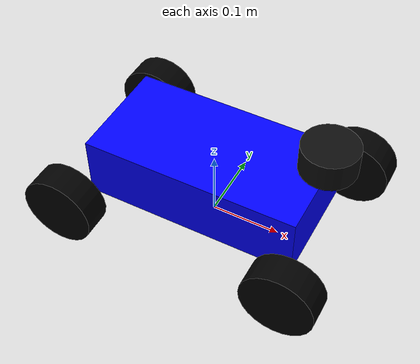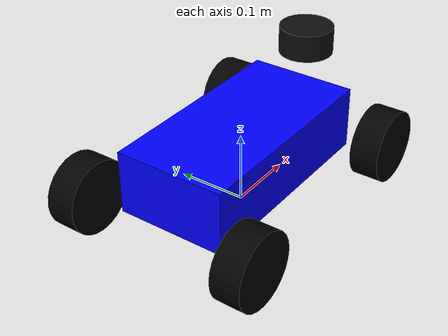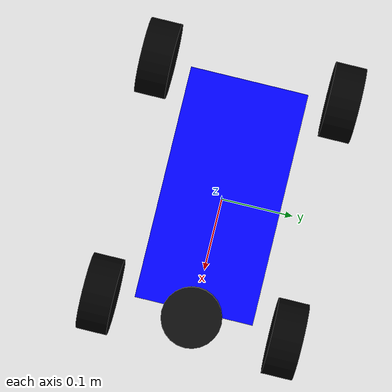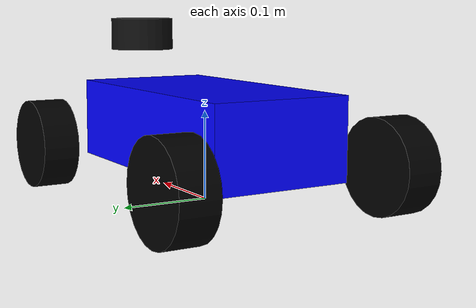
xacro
<?xml version="1.0"?>

<robot xmlns:xacro="http://www.ros.org/wiki/xacro" name="senton">
   <xacro:include filename="$(find senton_description)/urdf/senton_properties.xacro"/>
    <link name="base_footprint"/>
        <joint name="base_footprint_joint" type="fixed">
            <parent link="base_footprint"/>
            <child link="base_link"/>
            <origin xyz="0 0 ${wheel_radius}" rpy="0 0 0"/>
        </joint>

     <link name="base_link">
    <visual>
        <origin xyz="0 0 ${chassis_z}" rpy="0 0 0"/>

        <geometry>
            <box size="${chassis_length} ${chassis_width} ${chassis_height}"/>
        </geometry>

        <material name="blue">
            <color rgba="0 0 1 1"/>
        </material>
    </visual>
    <collision>
        <geometry>
            <box size="${chassis_length} ${chassis_width} ${chassis_height}"/>
        </geometry>
        <origin xyz="0 0 ${chassis_z}" rpy="0 0 0"/>
    </collision>
    <xacro:box_inertia
        m="${chassis_mass}"
        x="${chassis_length}"
        y="${chassis_width}"
        z="${chassis_height}"
        o_xyz="0 0 ${chassis_z}"
        o_rpy="0 0 0"/>
</link>
    <!-- Wheel macro -->
<xacro:macro name="wheel" params="name parent x y">

    <joint name="${name}_joint" type="continuous">
        <parent link="${parent}"/>
        <child link="${name}_wheel_link"/>

        <origin xyz="${x} ${y} 0" rpy="0 0 0"/>
        <axis xyz="0 1 0"/>
    </joint>

    <link name="${name}_wheel_link">
        <visual>
            <origin xyz="0 0 0" rpy="${pi/2} 0 0"/>

            <geometry>
                <cylinder
                    radius="${wheel_radius}"
                    length="${wheel_width}"/>
            </geometry>

            <material name="black">
                <color rgba="0 0 0 1"/>
            </material>
        </visual>
        <collision>
            <geometry>
                <cylinder
                    radius="${wheel_radius}"
                    length="${wheel_width}"/>
            </geometry>
            <origin xyz="0 0 0" rpy="${pi/2} 0 0"/>
        </collision>
        <xacro:cylinder_inertia
            m="${wheel_mass}"
            r="${wheel_radius}"
            l="${wheel_width}"
            o_xyz="0 0 0"
            o_rpy="${pi/2} 0 0"/>
    </link>

</xacro:macro>

<!-- Front steering knuckle macro -->
<xacro:macro name="steering_knuckle" params="name x y">

    <link name="${name}_knuckle_link">
    <xacro:box_inertia
        m="${knuckle_mass}"
        x="${knuckle_length}"
        y="${knuckle_width}"
        z="${knuckle_height}"
        o_xyz="0 0 0"
        o_rpy="0 0 0"/>
</link>

    <joint name="${name}_steering_joint" type="revolute">
        <parent link="base_link"/>
        <child link="${name}_knuckle_link"/>

        <origin xyz="${x} ${y} 0" rpy="0 0 0"/>
        <axis xyz="0 0 1"/>

        <limit
            lower="-0.5"
            upper="0.5"
            effort="10"
            velocity="5"/>
    </joint>

</xacro:macro>

   <!-- Create front steering knuckles -->
<xacro:steering_knuckle
    name="front_left"
    x="${wheelbase/2}"
    y="${track_width/2}"
/>

<xacro:steering_knuckle
    name="front_right"
    x="${wheelbase/2}"
    y="${-track_width/2}"
/>

<!-- Front wheels attach to their steering knuckles -->
<xacro:wheel
    name="front_left"
    parent="front_left_knuckle_link"
    x="0"
    y="0"
/>

<xacro:wheel
    name="front_right"
    parent="front_right_knuckle_link"
    x="0"
    y="0"
/>

<!-- Rear wheels attach directly to base_link -->
<xacro:wheel
    name="rear_left"
    parent="base_link"
    x="${-wheelbase/2}"
    y="${track_width/2}"
/>

<xacro:wheel
    name="rear_right"
    parent="base_link"
    x="${-wheelbase/2}"
    y="${-track_width/2}"
/>
<ros2_control name="GazeboSystem" type="system">
    <hardware>
        <plugin>gz_ros2_control/GazeboSimSystem</plugin>
    </hardware>
    <joint name="front_left_steering_joint" >
        <command_interface name="position"/>
        <state_interface name="position"/>
        <state_interface  name="velocity"/>

    </joint>
    <joint name="front_right_steering_joint">
        <command_interface name="position"/>
        <state_interface name="position"/>
        <state_interface name="velocity"/>
    </joint>
    <joint name="front_left_joint">
        <state_interface name="position"/>
        <state_interface name="velocity"/>
    </joint>

    <joint name="front_right_joint">
        <state_interface name="position"/>
        <state_interface name="velocity"/>
    </joint>
    <joint name="rear_left_joint">
        <command_interface name="velocity"/>
        <state_interface name="position"/>
        <state_interface name="velocity"/>
    </joint>
    <joint name="rear_right_joint">
        <command_interface name="velocity"/>
        <state_interface name="position"/>
        <state_interface name="velocity"/>
    </joint>
</ros2_control>
<gazebo>
    <plugin filename="gz_ros2_control-system"
            name="gz_ros2_control::GazeboSimROS2ControlPlugin">
        <parameters>$(find senton_description)/config/controllers.yaml</parameters>
    </plugin>

</gazebo>
<link name="lidar_link">
    <visual>
        <geometry>
            <cylinder radius="${lidar_radius}" length="${lidar_height}"/>
        </geometry>
        <material name="black">
            <color rgba="0.05 0.05 0.05 1.0"/>
        </material>
    </visual>
    <collision>
        <geometry>
            <cylinder radius="${lidar_radius}" length="${lidar_height}"/>
        </geometry>
    </collision>
    <xacro:cylinder_inertia
        m="${lidar_mass}"
        r="${lidar_radius}"
        l="${lidar_height}"
        o_xyz="0 0 0"
        o_rpy="0 0 0"/>
</link>
<joint name="lidar_joint" type="fixed">
    <parent link="base_link"/>
    <child link="lidar_link"/>
    <origin xyz="0.16 0 0.13" rpy="0 0 0"/>
</joint>
<gazebo reference="lidar_link">
    <sensor name="lidar_sensor" type="gpu_lidar">
        <update_rate>10</update_rate>
        <always_on>true</always_on>
        <visualize>true</visualize>
        <ray>
            <scan>
                <horizontal>
                    <samples>3200</samples>
                    <min_angle>-${pi}</min_angle>
                    <max_angle>${pi}</max_angle>
                </horizontal>
                <vertical>
                    <samples>1</samples>
                    <resolution>1</resolution>
                    <min_angle>0</min_angle>
                    <max_angle>0</max_angle>
                </vertical>
            </scan>
            <range>
                <min>0.05</min>
                <max>30.0</max>
                <resolution>0.013</resolution>
            </range>
        </ray>
        <topic>scan</topic>
        <gz_frame_id>lidar_link</gz_frame_id>
    </sensor>

</gazebo>
</robot>

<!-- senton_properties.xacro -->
<robot xmlns:xacro="http://www.ros.org/wiki/xacro">

    <!-- Vehicle dimensions -->
    <xacro:property name="vehicle_length" value="0.558"/>
    <xacro:property name="vehicle_width" value="0.305"/>
    <xacro:property name="vehicle_height" value="0.210"/>
    <xacro:property name="vehicle_mass" value="3.55"/>
    <xacro:property name="wheelbase" value="0.327"/>

    <!-- RPLIDAR S2-->
    <xacro:property name="lidar_radius" value="0.0385"/>
    <xacro:property name="lidar_height" value="0.03885"/>
    <xacro:property name="lidar_mass" value = "0.190"/>

    <!-- Wheel dimensions -->
    <xacro:property name="wheel_radius" value="0.052"/>
    <xacro:property name="wheel_width" value="0.042"/>
    <xacro:property name="track_width" value="0.255"/>
    <xacro:property name="wheel_mass" value="0.130"/>

    <!-- Simplified chassis / tub dimensions -->
    <xacro:property name="chassis_length" value="0.308"/>
    <xacro:property name="chassis_width" value="0.157"/>
    <xacro:property name="chassis_height" value="0.09"/>
    <xacro:property name="chassis_z" value="0.03"/>

    <!-- Temporary steering knuckle approximation -->
    <xacro:property name="knuckle_mass" value="0.01"/>
    <xacro:property name="knuckle_length" value="0.02"/>
    <xacro:property name="knuckle_width" value="0.02"/>
    <xacro:property name="knuckle_height" value="0.02"/>

    <xacro:property
        name="chassis_mass"
        value="${vehicle_mass - 4 * wheel_mass - 2 * knuckle_mass}"/>

    <!-- Inertia macros -->
    <xacro:macro name="box_inertia" params="m x y z o_xyz o_rpy">
        <inertial>
            <origin xyz="${o_xyz}" rpy="${o_rpy}"/>
            <mass value="${m}"/>
            <inertia
                ixx="${(m / 12) * (y*y + z*z)}"
                ixy="0"
                ixz="0"
                iyy="${(m / 12) * (x*x + z*z)}"
                iyz="0"
                izz="${(m / 12) * (x*x + y*y)}"/>
        </inertial>
    </xacro:macro>

    <xacro:macro name="cylinder_inertia" params="m r l o_xyz o_rpy">
        <inertial>
            <origin xyz="${o_xyz}" rpy="${o_rpy}"/>
            <mass value="${m}"/>
            <inertia
                ixx="${(m / 12) * (3*r*r + l*l)}"
                ixy="0"
                ixz="0"
                iyy="${(m / 12) * (3*r*r + l*l)}"
                iyz="0"
                izz="${(m / 2) * r*r}"/>
        </inertial>
    </xacro:macro>

</robot>
